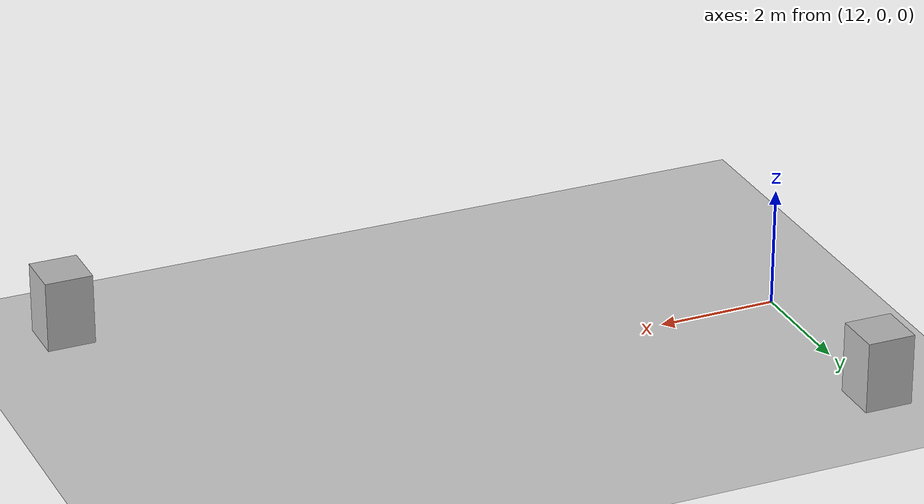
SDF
<?xml version="1.0"?>
<sdf version="1.6">
  <world name="v2-04g-p2-q1-qual-braking-v125-s5331">
    <gravity>0 0 -9.81</gravity>
    <physics name="v2_deterministic" type="ode">
      <max_step_size>0.002</max_step_size>
      <real_time_update_rate>500</real_time_update_rate>
    </physics>
    <include>
      <uri>model://sun</uri>
    </include>
    <include>
      <uri>model://ground_plane</uri>
    </include>
    <model name="cruise-left">
      <static>true</static>
      <pose>11.981622435 3.536225921 0.600000000 0 0 -0.003924040</pose>
      <link name="link">
        <collision name="collision">
          <geometry>
            <box>
              <size>0.800000 0.800000 1.200000</size>
            </box>
          </geometry>
        </collision>
        <visual name="visual">
          <geometry>
            <box>
              <size>0.800000 0.800000 1.200000</size>
            </box>
          </geometry>
        </visual>
      </link>
    </model>
    <model name="cruise-right">
      <static>true</static>
      <pose>22.977998226 -3.499364671 0.600000000 0 0 0.000042283</pose>
      <link name="link">
        <collision name="collision">
          <geometry>
            <box>
              <size>0.800000 0.800000 1.200000</size>
            </box>
          </geometry>
        </collision>
        <visual name="visual">
          <geometry>
            <box>
              <size>0.800000 0.800000 1.200000</size>
            </box>
          </geometry>
        </visual>
      </link>
    </model>
  </world>
</sdf>
